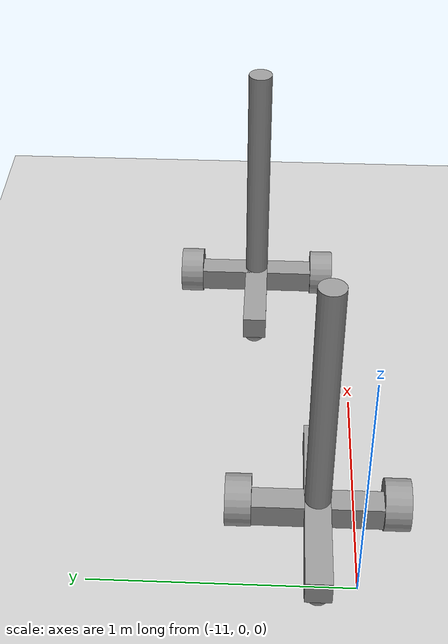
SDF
<sdf version="1.6">
 <world name="default">
  <model name="ground_plane">
   <static>1</static>
   <link name="link">
    <collision name="collision">
     <geometry><plane><normal>0 0 1</normal><size>100 100</size></plane></geometry>
     <surface><friction><ode><mu>100</mu><mu2>50</mu2></ode></friction></surface>
    </collision>
    <visual name="visual">
     <cast_shadows>0</cast_shadows>
     <geometry><plane><normal>0 0 1</normal><size>100 100</size></plane></geometry>
     <material>
      <script><uri>file://media/materials/scripts/gazebo.material</uri><name>Gazebo/Grey</name></script>
     </material>
    </visual>
   </link>
  </model>
  <model name="EimerRobot">
   <link name="link_0_clone">
    <pose>2.5834 -4.84657 0.119047 0 -0 0</pose>
    <inertial>
     <mass>1</mass>
     <inertia>
      <ixx>0.166667</ixx>
      <ixy>0</ixy>
      <ixz>0</ixz>
      <iyy>0.166667</iyy>
      <iyz>0</iyz>
      <izz>0.166667</izz>
     </inertia>
    </inertial>
    <visual name="visual">
     <geometry><box><size>0.1 0.5 0.1</size></box></geometry>
     <material>
      <lighting>1</lighting>
      <script><uri>file://media/materials/scripts/gazebo.material</uri><name>Gazebo/Grey</name></script>
      <shader type="pixel"><normal_map>__default__</normal_map></shader>
      <ambient>0.3 0.3 0.3 1</ambient>
      <diffuse>0.7 0.7 0.7 1</diffuse>
      <specular>0.01 0.01 0.01 1</specular>
      <emissive>0 0 0 1</emissive>
     </material>
    </visual>
    <collision name="collision">
     <geometry><box><size>0.1 0.5 0.1</size></box></geometry>
     <surface>
      <friction>
       <ode><mu>1</mu><mu2>1</mu2><fdir1>0 0 0</fdir1><slip1>0</slip1><slip2>0</slip2></ode>
       <torsional>
        <coefficient>1</coefficient>
        <patch_radius>0</patch_radius>
        <surface_radius>0</surface_radius>
        <use_patch_radius>1</use_patch_radius>
        <ode><slip>0</slip></ode>
       </torsional>
      </friction>
      <bounce><restitution_coefficient>0</restitution_coefficient><threshold>1e+06</threshold></bounce>
      <contact>
       <collide_without_contact>0</collide_without_contact>
       <collide_without_contact_bitmask>1</collide_without_contact_bitmask>
       <collide_bitmask>1</collide_bitmask>
       <ode>
        <soft_cfm>0</soft_cfm>
        <soft_erp>0.2</soft_erp>
        <kp>1e+13</kp>
        <kd>1</kd>
        <max_vel>0.01</max_vel>
        <min_depth>0</min_depth>
       </ode>
       <bullet>
        <split_impulse>1</split_impulse>
        <split_impulse_penetration_threshold>-0.01</split_impulse_penetration_threshold>
        <soft_cfm>0</soft_cfm>
        <soft_erp>0.2</soft_erp>
        <kp>1e+13</kp>
        <kd>1</kd>
       </bullet>
      </contact>
     </surface>
    </collision>
   </link>
   <link name="link_0_clone_clone">
    <pose>2.58152 -4.846 0.119047 0 -0 1.5707</pose>
    <inertial>
     <mass>1</mass>
     <inertia>
      <ixx>0.166667</ixx>
      <ixy>0</ixy>
      <ixz>0</ixz>
      <iyy>0.166667</iyy>
      <iyz>0</iyz>
      <izz>0.166667</izz>
     </inertia>
    </inertial>
    <visual name="visual">
     <geometry><box><size>0.1 0.8 0.1</size></box></geometry>
     <material>
      <lighting>1</lighting>
      <script><uri>file://media/materials/scripts/gazebo.material</uri><name>Gazebo/Grey</name></script>
      <shader type="pixel"><normal_map>__default__</normal_map></shader>
      <ambient>0.3 0.3 0.3 1</ambient>
      <diffuse>0.7 0.7 0.7 1</diffuse>
      <specular>0.01 0.01 0.01 1</specular>
      <emissive>0 0 0 1</emissive>
     </material>
    </visual>
    <collision name="collision">
     <geometry><box><size>0.1 0.8 0.1</size></box></geometry>
     <surface>
      <friction>
       <ode><mu>1</mu><mu2>1</mu2><fdir1>0 0 0</fdir1><slip1>0</slip1><slip2>0</slip2></ode>
       <torsional>
        <coefficient>1</coefficient>
        <patch_radius>0</patch_radius>
        <surface_radius>0</surface_radius>
        <use_patch_radius>1</use_patch_radius>
        <ode><slip>0</slip></ode>
       </torsional>
      </friction>
      <bounce><restitution_coefficient>0</restitution_coefficient><threshold>1e+06</threshold></bounce>
      <contact>
       <collide_without_contact>0</collide_without_contact>
       <collide_without_contact_bitmask>1</collide_without_contact_bitmask>
       <collide_bitmask>1</collide_bitmask>
       <ode>
        <soft_cfm>0</soft_cfm>
        <soft_erp>0.2</soft_erp>
        <kp>1e+13</kp>
        <kd>1</kd>
        <max_vel>0.01</max_vel>
        <min_depth>0</min_depth>
       </ode>
       <bullet>
        <split_impulse>1</split_impulse>
        <split_impulse_penetration_threshold>-0.01</split_impulse_penetration_threshold>
        <soft_cfm>0</soft_cfm>
        <soft_erp>0.2</soft_erp>
        <kp>1e+13</kp>
        <kd>1</kd>
       </bullet>
      </contact>
     </surface>
    </collision>
   </link>
   <link name="link_1_clone">
    <pose>2.61519 -4.54652 0.119046 1.5707 -0 0</pose>
    <inertial>
     <mass>1</mass>
     <inertia><ixx>0.145833</ixx><ixy>0</ixy><ixz>0</ixz><iyy>0.145833</iyy><iyz>0</iyz><izz>0.125</izz></inertia>
    </inertial>
    <visual name="visual">
     <geometry><cylinder><radius>0.1</radius><length>0.1</length></cylinder></geometry>
     <material>
      <lighting>1</lighting>
      <script><uri>file://media/materials/scripts/gazebo.material</uri><name>Gazebo/Grey</name></script>
      <shader type="pixel"><normal_map>__default__</normal_map></shader>
      <ambient>0.3 0.3 0.3 1</ambient>
      <diffuse>0.7 0.7 0.7 1</diffuse>
      <specular>0.01 0.01 0.01 1</specular>
      <emissive>0 0 0 1</emissive>
     </material>
    </visual>
    <collision name="collision">
     <geometry><cylinder><radius>0.1</radius><length>0.1</length></cylinder></geometry>
     <surface>
      <friction>
       <ode><mu>1</mu><mu2>1</mu2><fdir1>0 0 0</fdir1><slip1>0</slip1><slip2>0</slip2></ode>
       <torsional>
        <coefficient>1</coefficient>
        <patch_radius>0</patch_radius>
        <surface_radius>0</surface_radius>
        <use_patch_radius>1</use_patch_radius>
        <ode><slip>0</slip></ode>
       </torsional>
      </friction>
      <bounce><restitution_coefficient>0</restitution_coefficient><threshold>1e+06</threshold></bounce>
      <contact>
       <collide_without_contact>0</collide_without_contact>
       <collide_without_contact_bitmask>1</collide_without_contact_bitmask>
       <collide_bitmask>1</collide_bitmask>
       <ode>
        <soft_cfm>0</soft_cfm>
        <soft_erp>0.2</soft_erp>
        <kp>1e+13</kp>
        <kd>1</kd>
        <max_vel>0.01</max_vel>
        <min_depth>0</min_depth>
       </ode>
       <bullet>
        <split_impulse>1</split_impulse>
        <split_impulse_penetration_threshold>-0.01</split_impulse_penetration_threshold>
        <soft_cfm>0</soft_cfm>
        <soft_erp>0.2</soft_erp>
        <kp>1e+13</kp>
        <kd>1</kd>
       </bullet>
      </contact>
     </surface>
    </collision>
   </link>
   <link name="link_1_clone_clone">
    <pose>2.61534 -5.14663 0.119047 1.5707 -0 0</pose>
    <inertial>
     <mass>1</mass>
     <inertia><ixx>0.145833</ixx><ixy>0</ixy><ixz>0</ixz><iyy>0.145833</iyy><iyz>0</iyz><izz>0.125</izz></inertia>
    </inertial>
    <visual name="visual">
     <geometry><cylinder><radius>0.1</radius><length>0.1</length></cylinder></geometry>
     <material>
      <lighting>1</lighting>
      <script><uri>file://media/materials/scripts/gazebo.material</uri><name>Gazebo/Grey</name></script>
      <shader type="pixel"><normal_map>__default__</normal_map></shader>
      <ambient>0.3 0.3 0.3 1</ambient>
      <diffuse>0.7 0.7 0.7 1</diffuse>
      <specular>0.01 0.01 0.01 1</specular>
      <emissive>0 0 0 1</emissive>
     </material>
    </visual>
    <collision name="collision">
     <geometry><cylinder><radius>0.1</radius><length>0.1</length></cylinder></geometry>
     <surface>
      <friction>
       <ode><mu>1</mu><mu2>1</mu2><fdir1>0 0 0</fdir1><slip1>0</slip1><slip2>0</slip2></ode>
       <torsional>
        <coefficient>1</coefficient>
        <patch_radius>0</patch_radius>
        <surface_radius>0</surface_radius>
        <use_patch_radius>1</use_patch_radius>
        <ode><slip>0</slip></ode>
       </torsional>
      </friction>
      <bounce><restitution_coefficient>0</restitution_coefficient><threshold>1e+06</threshold></bounce>
      <contact>
       <collide_without_contact>0</collide_without_contact>
       <collide_without_contact_bitmask>1</collide_without_contact_bitmask>
       <collide_bitmask>1</collide_bitmask>
       <ode>
        <soft_cfm>0</soft_cfm>
        <soft_erp>0.2</soft_erp>
        <kp>1e+13</kp>
        <kd>1</kd>
        <max_vel>0.01</max_vel>
        <min_depth>0</min_depth>
       </ode>
       <bullet>
        <split_impulse>1</split_impulse>
        <split_impulse_penetration_threshold>-0.01</split_impulse_penetration_threshold>
        <soft_cfm>0</soft_cfm>
        <soft_erp>0.2</soft_erp>
        <kp>1e+13</kp>
        <kd>1</kd>
       </bullet>
      </contact>
     </surface>
    </collision>
   </link>
   <link name="link_3_clone">
    <pose>2.93153 -4.846 0.069047 0 -0 0</pose>
    <inertial>
     <mass>1</mass>
     <inertia><ixx>0.1</ixx><ixy>0</ixy><ixz>0</ixz><iyy>0.1</iyy><iyz>0</iyz><izz>0.1</izz></inertia>
    </inertial>
    <visual name="visual">
     <geometry><sphere><radius>0.05</radius></sphere></geometry>
     <material>
      <lighting>1</lighting>
      <script><uri>file://media/materials/scripts/gazebo.material</uri><name>Gazebo/Grey</name></script>
      <shader type="pixel"><normal_map>__default__</normal_map></shader>
      <ambient>0.3 0.3 0.3 1</ambient>
      <diffuse>0.7 0.7 0.7 1</diffuse>
      <specular>0.01 0.01 0.01 1</specular>
      <emissive>0 0 0 1</emissive>
     </material>
    </visual>
    <collision name="collision">
     <geometry><sphere><radius>0.05</radius></sphere></geometry>
     <surface>
      <friction>
       <ode><mu>1</mu><mu2>1</mu2><fdir1>0 0 0</fdir1><slip1>0</slip1><slip2>0</slip2></ode>
       <torsional>
        <coefficient>1</coefficient>
        <patch_radius>0</patch_radius>
        <surface_radius>0</surface_radius>
        <use_patch_radius>1</use_patch_radius>
        <ode><slip>0</slip></ode>
       </torsional>
      </friction>
      <bounce><restitution_coefficient>0</restitution_coefficient><threshold>1e+06</threshold></bounce>
      <contact>
       <collide_without_contact>0</collide_without_contact>
       <collide_without_contact_bitmask>1</collide_without_contact_bitmask>
       <collide_bitmask>1</collide_bitmask>
       <ode>
        <soft_cfm>0</soft_cfm>
        <soft_erp>0.2</soft_erp>
        <kp>1e+13</kp>
        <kd>1</kd>
        <max_vel>0.01</max_vel>
        <min_depth>0</min_depth>
       </ode>
       <bullet>
        <split_impulse>1</split_impulse>
        <split_impulse_penetration_threshold>-0.01</split_impulse_penetration_threshold>
        <soft_cfm>0</soft_cfm>
        <soft_erp>0.2</soft_erp>
        <kp>1e+13</kp>
        <kd>1</kd>
       </bullet>
      </contact>
     </surface>
    </collision>
   </link>
   <link name="link_3_clone_clone">
    <pose>2.23152 -4.846 0.069047 0 -0 0</pose>
    <inertial>
     <mass>1</mass>
     <inertia><ixx>0.1</ixx><ixy>0</ixy><ixz>0</ixz><iyy>0.1</iyy><iyz>0</iyz><izz>0.1</izz></inertia>
    </inertial>
    <visual name="visual">
     <geometry><sphere><radius>0.05</radius></sphere></geometry>
     <material>
      <lighting>1</lighting>
      <script><uri>file://media/materials/scripts/gazebo.material</uri><name>Gazebo/Grey</name></script>
      <shader type="pixel"><normal_map>__default__</normal_map></shader>
      <ambient>0.3 0.3 0.3 1</ambient>
      <diffuse>0.7 0.7 0.7 1</diffuse>
      <specular>0.01 0.01 0.01 1</specular>
      <emissive>0 0 0 1</emissive>
     </material>
    </visual>
    <collision name="collision">
     <geometry><sphere><radius>0.05</radius></sphere></geometry>
     <surface>
      <friction>
       <ode><mu>1</mu><mu2>1</mu2><fdir1>0 0 0</fdir1><slip1>0</slip1><slip2>0</slip2></ode>
       <torsional>
        <coefficient>1</coefficient>
        <patch_radius>0</patch_radius>
        <surface_radius>0</surface_radius>
        <use_patch_radius>1</use_patch_radius>
        <ode><slip>0</slip></ode>
       </torsional>
      </friction>
      <bounce><restitution_coefficient>0</restitution_coefficient><threshold>1e+06</threshold></bounce>
      <contact>
       <collide_without_contact>0</collide_without_contact>
       <collide_without_contact_bitmask>1</collide_without_contact_bitmask>
       <collide_bitmask>1</collide_bitmask>
       <ode>
        <soft_cfm>0</soft_cfm>
        <soft_erp>0.2</soft_erp>
        <kp>1e+13</kp>
        <kd>1</kd>
        <max_vel>0.01</max_vel>
        <min_depth>0</min_depth>
       </ode>
       <bullet>
        <split_impulse>1</split_impulse>
        <split_impulse_penetration_threshold>-0.01</split_impulse_penetration_threshold>
        <soft_cfm>0</soft_cfm>
        <soft_erp>0.2</soft_erp>
        <kp>1e+13</kp>
        <kd>1</kd>
       </bullet>
      </contact>
     </surface>
    </collision>
   </link>
   <link name="link_4">
    <pose>2.5834 -4.84657 0.669047 0 -0 0</pose>
    <inertial>
     <mass>1</mass>
     <inertia><ixx>0.145833</ixx><ixy>0</ixy><ixz>0</ixz><iyy>0.145833</iyy><iyz>0</iyz><izz>0.125</izz></inertia>
    </inertial>
    <visual name="visual">
     <geometry><cylinder><radius>0.05</radius><length>1</length></cylinder></geometry>
     <material>
      <lighting>1</lighting>
      <script><uri>file://media/materials/scripts/gazebo.material</uri><name>Gazebo/Grey</name></script>
      <shader type="pixel"><normal_map>__default__</normal_map></shader>
      <ambient>0.3 0.3 0.3 1</ambient>
      <diffuse>0.7 0.7 0.7 1</diffuse>
      <specular>0.01 0.01 0.01 1</specular>
      <emissive>0 0 0 1</emissive>
     </material>
    </visual>
    <collision name="collision">
     <geometry><cylinder><radius>0.05</radius><length>1</length></cylinder></geometry>
     <surface>
      <friction>
       <ode><mu>1</mu><mu2>1</mu2><fdir1>0 0 0</fdir1><slip1>0</slip1><slip2>0</slip2></ode>
       <torsional>
        <coefficient>1</coefficient>
        <patch_radius>0</patch_radius>
        <surface_radius>0</surface_radius>
        <use_patch_radius>1</use_patch_radius>
        <ode><slip>0</slip></ode>
       </torsional>
      </friction>
      <bounce><restitution_coefficient>0</restitution_coefficient><threshold>1e+06</threshold></bounce>
      <contact>
       <collide_without_contact>0</collide_without_contact>
       <collide_without_contact_bitmask>1</collide_without_contact_bitmask>
       <collide_bitmask>1</collide_bitmask>
       <ode>
        <soft_cfm>0</soft_cfm>
        <soft_erp>0.2</soft_erp>
        <kp>1e+13</kp>
        <kd>1</kd>
        <max_vel>0.01</max_vel>
        <min_depth>0</min_depth>
       </ode>
       <bullet>
        <split_impulse>1</split_impulse>
        <split_impulse_penetration_threshold>-0.01</split_impulse_penetration_threshold>
        <soft_cfm>0</soft_cfm>
        <soft_erp>0.2</soft_erp>
        <kp>1e+13</kp>
        <kd>1</kd>
       </bullet>
      </contact>
     </surface>
    </collision>
   </link>
   <joint name="link_0_clone_JOINT_0" type="fixed">
    <parent>link_0_clone</parent>
    <child>link_0_clone_clone</child>
    <physics>
     <ode><limit><cfm>0</cfm><erp>0.2</erp></limit><suspension><cfm>0</cfm><erp>0.2</erp></suspension></ode>
    </physics>
   </joint>
   <joint name="link_0_clone_JOINT_1" type="revolute">
    <parent>link_0_clone</parent>
    <child>link_1_clone</child>
    <axis>
     <xyz>0 0 1</xyz>
     <use_parent_model_frame>0</use_parent_model_frame>
     <limit>
      <lower>-1.79769e+308</lower>
      <upper>1.79769e+308</upper>
      <effort>-1</effort>
      <velocity>-1</velocity>
     </limit>
     <dynamics>
      <spring_reference>0</spring_reference>
      <spring_stiffness>0</spring_stiffness>
      <damping>0</damping>
     </dynamics>
    </axis>
    <physics>
     <ode><limit><cfm>0</cfm><erp>0.2</erp></limit><suspension><cfm>0</cfm><erp>0.2</erp></suspension></ode>
    </physics>
   </joint>
   <joint name="link_0_clone_JOINT_2" type="revolute">
    <parent>link_0_clone</parent>
    <child>link_1_clone_clone</child>
    <axis>
     <xyz>0 0 1</xyz>
     <use_parent_model_frame>0</use_parent_model_frame>
     <limit>
      <lower>-1.79769e+308</lower>
      <upper>1.79769e+308</upper>
      <effort>-1</effort>
      <velocity>-1</velocity>
     </limit>
     <dynamics>
      <spring_reference>0</spring_reference>
      <spring_stiffness>0</spring_stiffness>
      <damping>0</damping>
     </dynamics>
    </axis>
    <physics>
     <ode><limit><cfm>0</cfm><erp>0.2</erp></limit><suspension><cfm>0</cfm><erp>0.2</erp></suspension></ode>
    </physics>
   </joint>
   <joint name="link_0_clone_JOINT_8" type="fixed">
    <parent>link_0_clone</parent>
    <child>link_4</child>
    <physics>
     <ode><limit><cfm>0</cfm><erp>0.2</erp></limit><suspension><cfm>0</cfm><erp>0.2</erp></suspension></ode>
    </physics>
   </joint>
   <joint name="link_0_clone_clone_JOINT_5" type="ball">
    <parent>link_0_clone_clone</parent>
    <child>link_3_clone</child>
    <physics>
     <ode><limit><cfm>0</cfm><erp>0.2</erp></limit><suspension><cfm>0</cfm><erp>0.2</erp></suspension></ode>
    </physics>
   </joint>
   <joint name="link_0_clone_clone_JOINT_6" type="ball">
    <parent>link_0_clone_clone</parent>
    <child>link_3_clone_clone</child>
    <physics>
     <ode><limit><cfm>0</cfm><erp>0.2</erp></limit><suspension><cfm>0</cfm><erp>0.2</erp></suspension></ode>
    </physics>
   </joint>
   <static>0</static>
   <pose>-11.8208 5.261 -0.019125 -6e-06 -1.9e-05 -0.000245</pose>
  </model>
  <model name="EimerRobot_0">
   <link name="link_0_clone">
    <pose>2.5834 -4.84657 0.119047 0 -0 0</pose>
    <inertial>
     <mass>1</mass>
     <inertia>
      <ixx>0.166667</ixx>
      <ixy>0</ixy>
      <ixz>0</ixz>
      <iyy>0.166667</iyy>
      <iyz>0</iyz>
      <izz>0.166667</izz>
     </inertia>
    </inertial>
    <visual name="visual">
     <geometry><box><size>0.1 0.5 0.1</size></box></geometry>
     <material>
      <lighting>1</lighting>
      <script><uri>file://media/materials/scripts/gazebo.material</uri><name>Gazebo/Grey</name></script>
      <shader type="pixel"><normal_map>__default__</normal_map></shader>
      <ambient>0.3 0.3 0.3 1</ambient>
      <diffuse>0.7 0.7 0.7 1</diffuse>
      <specular>0.01 0.01 0.01 1</specular>
      <emissive>0 0 0 1</emissive>
     </material>
    </visual>
    <collision name="collision">
     <geometry><box><size>0.1 0.5 0.1</size></box></geometry>
     <surface>
      <friction>
       <ode><mu>1</mu><mu2>1</mu2><fdir1>0 0 0</fdir1><slip1>0</slip1><slip2>0</slip2></ode>
       <torsional>
        <coefficient>1</coefficient>
        <patch_radius>0</patch_radius>
        <surface_radius>0</surface_radius>
        <use_patch_radius>1</use_patch_radius>
        <ode><slip>0</slip></ode>
       </torsional>
      </friction>
      <bounce><restitution_coefficient>0</restitution_coefficient><threshold>1e+06</threshold></bounce>
      <contact>
       <collide_without_contact>0</collide_without_contact>
       <collide_without_contact_bitmask>1</collide_without_contact_bitmask>
       <collide_bitmask>1</collide_bitmask>
       <ode>
        <soft_cfm>0</soft_cfm>
        <soft_erp>0.2</soft_erp>
        <kp>1e+13</kp>
        <kd>1</kd>
        <max_vel>0.01</max_vel>
        <min_depth>0</min_depth>
       </ode>
       <bullet>
        <split_impulse>1</split_impulse>
        <split_impulse_penetration_threshold>-0.01</split_impulse_penetration_threshold>
        <soft_cfm>0</soft_cfm>
        <soft_erp>0.2</soft_erp>
        <kp>1e+13</kp>
        <kd>1</kd>
       </bullet>
      </contact>
     </surface>
    </collision>
   </link>
   <link name="link_0_clone_clone">
    <pose>2.58152 -4.846 0.119047 0 -0 1.5707</pose>
    <inertial>
     <mass>1</mass>
     <inertia>
      <ixx>0.166667</ixx>
      <ixy>0</ixy>
      <ixz>0</ixz>
      <iyy>0.166667</iyy>
      <iyz>0</iyz>
      <izz>0.166667</izz>
     </inertia>
    </inertial>
    <visual name="visual">
     <geometry><box><size>0.1 0.8 0.1</size></box></geometry>
     <material>
      <lighting>1</lighting>
      <script><uri>file://media/materials/scripts/gazebo.material</uri><name>Gazebo/Grey</name></script>
      <shader type="pixel"><normal_map>__default__</normal_map></shader>
      <ambient>0.3 0.3 0.3 1</ambient>
      <diffuse>0.7 0.7 0.7 1</diffuse>
      <specular>0.01 0.01 0.01 1</specular>
      <emissive>0 0 0 1</emissive>
     </material>
    </visual>
    <collision name="collision">
     <geometry><box><size>0.1 0.8 0.1</size></box></geometry>
     <surface>
      <friction>
       <ode><mu>1</mu><mu2>1</mu2><fdir1>0 0 0</fdir1><slip1>0</slip1><slip2>0</slip2></ode>
       <torsional>
        <coefficient>1</coefficient>
        <patch_radius>0</patch_radius>
        <surface_radius>0</surface_radius>
        <use_patch_radius>1</use_patch_radius>
        <ode><slip>0</slip></ode>
       </torsional>
      </friction>
      <bounce><restitution_coefficient>0</restitution_coefficient><threshold>1e+06</threshold></bounce>
      <contact>
       <collide_without_contact>0</collide_without_contact>
       <collide_without_contact_bitmask>1</collide_without_contact_bitmask>
       <collide_bitmask>1</collide_bitmask>
       <ode>
        <soft_cfm>0</soft_cfm>
        <soft_erp>0.2</soft_erp>
        <kp>1e+13</kp>
        <kd>1</kd>
        <max_vel>0.01</max_vel>
        <min_depth>0</min_depth>
       </ode>
       <bullet>
        <split_impulse>1</split_impulse>
        <split_impulse_penetration_threshold>-0.01</split_impulse_penetration_threshold>
        <soft_cfm>0</soft_cfm>
        <soft_erp>0.2</soft_erp>
        <kp>1e+13</kp>
        <kd>1</kd>
       </bullet>
      </contact>
     </surface>
    </collision>
   </link>
   <link name="link_1_clone">
    <pose>2.61519 -4.54652 0.119046 1.5707 -0 0</pose>
    <inertial>
     <mass>1</mass>
     <inertia><ixx>0.145833</ixx><ixy>0</ixy><ixz>0</ixz><iyy>0.145833</iyy><iyz>0</iyz><izz>0.125</izz></inertia>
    </inertial>
    <visual name="visual">
     <geometry><cylinder><radius>0.1</radius><length>0.1</length></cylinder></geometry>
     <material>
      <lighting>1</lighting>
      <script><uri>file://media/materials/scripts/gazebo.material</uri><name>Gazebo/Grey</name></script>
      <shader type="pixel"><normal_map>__default__</normal_map></shader>
      <ambient>0.3 0.3 0.3 1</ambient>
      <diffuse>0.7 0.7 0.7 1</diffuse>
      <specular>0.01 0.01 0.01 1</specular>
      <emissive>0 0 0 1</emissive>
     </material>
    </visual>
    <collision name="collision">
     <geometry><cylinder><radius>0.1</radius><length>0.1</length></cylinder></geometry>
     <surface>
      <friction>
       <ode><mu>1</mu><mu2>1</mu2><fdir1>0 0 0</fdir1><slip1>0</slip1><slip2>0</slip2></ode>
       <torsional>
        <coefficient>1</coefficient>
        <patch_radius>0</patch_radius>
        <surface_radius>0</surface_radius>
        <use_patch_radius>1</use_patch_radius>
        <ode><slip>0</slip></ode>
       </torsional>
      </friction>
      <bounce><restitution_coefficient>0</restitution_coefficient><threshold>1e+06</threshold></bounce>
      <contact>
       <collide_without_contact>0</collide_without_contact>
       <collide_without_contact_bitmask>1</collide_without_contact_bitmask>
       <collide_bitmask>1</collide_bitmask>
       <ode>
        <soft_cfm>0</soft_cfm>
        <soft_erp>0.2</soft_erp>
        <kp>1e+13</kp>
        <kd>1</kd>
        <max_vel>0.01</max_vel>
        <min_depth>0</min_depth>
       </ode>
       <bullet>
        <split_impulse>1</split_impulse>
        <split_impulse_penetration_threshold>-0.01</split_impulse_penetration_threshold>
        <soft_cfm>0</soft_cfm>
        <soft_erp>0.2</soft_erp>
        <kp>1e+13</kp>
        <kd>1</kd>
       </bullet>
      </contact>
     </surface>
    </collision>
   </link>
   <link name="link_1_clone_clone">
    <pose>2.61534 -5.14663 0.119047 1.5707 -0 0</pose>
    <inertial>
     <mass>1</mass>
     <inertia><ixx>0.145833</ixx><ixy>0</ixy><ixz>0</ixz><iyy>0.145833</iyy><iyz>0</iyz><izz>0.125</izz></inertia>
    </inertial>
    <visual name="visual">
     <geometry><cylinder><radius>0.1</radius><length>0.1</length></cylinder></geometry>
     <material>
      <lighting>1</lighting>
      <script><uri>file://media/materials/scripts/gazebo.material</uri><name>Gazebo/Grey</name></script>
      <shader type="pixel"><normal_map>__default__</normal_map></shader>
      <ambient>0.3 0.3 0.3 1</ambient>
      <diffuse>0.7 0.7 0.7 1</diffuse>
      <specular>0.01 0.01 0.01 1</specular>
      <emissive>0 0 0 1</emissive>
     </material>
    </visual>
    <collision name="collision">
     <geometry><cylinder><radius>0.1</radius><length>0.1</length></cylinder></geometry>
     <surface>
      <friction>
       <ode><mu>1</mu><mu2>1</mu2><fdir1>0 0 0</fdir1><slip1>0</slip1><slip2>0</slip2></ode>
       <torsional>
        <coefficient>1</coefficient>
        <patch_radius>0</patch_radius>
        <surface_radius>0</surface_radius>
        <use_patch_radius>1</use_patch_radius>
        <ode><slip>0</slip></ode>
       </torsional>
      </friction>
      <bounce><restitution_coefficient>0</restitution_coefficient><threshold>1e+06</threshold></bounce>
      <contact>
       <collide_without_contact>0</collide_without_contact>
       <collide_without_contact_bitmask>1</collide_without_contact_bitmask>
       <collide_bitmask>1</collide_bitmask>
       <ode>
        <soft_cfm>0</soft_cfm>
        <soft_erp>0.2</soft_erp>
        <kp>1e+13</kp>
        <kd>1</kd>
        <max_vel>0.01</max_vel>
        <min_depth>0</min_depth>
       </ode>
       <bullet>
        <split_impulse>1</split_impulse>
        <split_impulse_penetration_threshold>-0.01</split_impulse_penetration_threshold>
        <soft_cfm>0</soft_cfm>
        <soft_erp>0.2</soft_erp>
        <kp>1e+13</kp>
        <kd>1</kd>
       </bullet>
      </contact>
     </surface>
    </collision>
   </link>
   <link name="link_3_clone">
    <pose>2.93153 -4.846 0.069047 0 -0 0</pose>
    <inertial>
     <mass>1</mass>
     <inertia><ixx>0.1</ixx><ixy>0</ixy><ixz>0</ixz><iyy>0.1</iyy><iyz>0</iyz><izz>0.1</izz></inertia>
    </inertial>
    <visual name="visual">
     <geometry><sphere><radius>0.05</radius></sphere></geometry>
     <material>
      <lighting>1</lighting>
      <script><uri>file://media/materials/scripts/gazebo.material</uri><name>Gazebo/Grey</name></script>
      <shader type="pixel"><normal_map>__default__</normal_map></shader>
      <ambient>0.3 0.3 0.3 1</ambient>
      <diffuse>0.7 0.7 0.7 1</diffuse>
      <specular>0.01 0.01 0.01 1</specular>
      <emissive>0 0 0 1</emissive>
     </material>
    </visual>
    <collision name="collision">
     <geometry><sphere><radius>0.05</radius></sphere></geometry>
     <surface>
      <friction>
       <ode><mu>1</mu><mu2>1</mu2><fdir1>0 0 0</fdir1><slip1>0</slip1><slip2>0</slip2></ode>
       <torsional>
        <coefficient>1</coefficient>
        <patch_radius>0</patch_radius>
        <surface_radius>0</surface_radius>
        <use_patch_radius>1</use_patch_radius>
        <ode><slip>0</slip></ode>
       </torsional>
      </friction>
      <bounce><restitution_coefficient>0</restitution_coefficient><threshold>1e+06</threshold></bounce>
      <contact>
       <collide_without_contact>0</collide_without_contact>
       <collide_without_contact_bitmask>1</collide_without_contact_bitmask>
       <collide_bitmask>1</collide_bitmask>
       <ode>
        <soft_cfm>0</soft_cfm>
        <soft_erp>0.2</soft_erp>
        <kp>1e+13</kp>
        <kd>1</kd>
        <max_vel>0.01</max_vel>
        <min_depth>0</min_depth>
       </ode>
       <bullet>
        <split_impulse>1</split_impulse>
        <split_impulse_penetration_threshold>-0.01</split_impulse_penetration_threshold>
        <soft_cfm>0</soft_cfm>
        <soft_erp>0.2</soft_erp>
        <kp>1e+13</kp>
        <kd>1</kd>
       </bullet>
      </contact>
     </surface>
    </collision>
   </link>
   <link name="link_3_clone_clone">
    <pose>2.23152 -4.846 0.069047 0 -0 0</pose>
    <inertial>
     <mass>1</mass>
     <inertia><ixx>0.1</ixx><ixy>0</ixy><ixz>0</ixz><iyy>0.1</iyy><iyz>0</iyz><izz>0.1</izz></inertia>
    </inertial>
    <visual name="visual">
     <geometry><sphere><radius>0.05</radius></sphere></geometry>
     <material>
      <lighting>1</lighting>
      <script><uri>file://media/materials/scripts/gazebo.material</uri><name>Gazebo/Grey</name></script>
      <shader type="pixel"><normal_map>__default__</normal_map></shader>
      <ambient>0.3 0.3 0.3 1</ambient>
      <diffuse>0.7 0.7 0.7 1</diffuse>
      <specular>0.01 0.01 0.01 1</specular>
      <emissive>0 0 0 1</emissive>
     </material>
    </visual>
    <collision name="collision">
     <geometry><sphere><radius>0.05</radius></sphere></geometry>
     <surface>
      <friction>
       <ode><mu>1</mu><mu2>1</mu2><fdir1>0 0 0</fdir1><slip1>0</slip1><slip2>0</slip2></ode>
       <torsional>
        <coefficient>1</coefficient>
        <patch_radius>0</patch_radius>
        <surface_radius>0</surface_radius>
        <use_patch_radius>1</use_patch_radius>
        <ode><slip>0</slip></ode>
       </torsional>
      </friction>
      <bounce><restitution_coefficient>0</restitution_coefficient><threshold>1e+06</threshold></bounce>
      <contact>
       <collide_without_contact>0</collide_without_contact>
       <collide_without_contact_bitmask>1</collide_without_contact_bitmask>
       <collide_bitmask>1</collide_bitmask>
       <ode>
        <soft_cfm>0</soft_cfm>
        <soft_erp>0.2</soft_erp>
        <kp>1e+13</kp>
        <kd>1</kd>
        <max_vel>0.01</max_vel>
        <min_depth>0</min_depth>
       </ode>
       <bullet>
        <split_impulse>1</split_impulse>
        <split_impulse_penetration_threshold>-0.01</split_impulse_penetration_threshold>
        <soft_cfm>0</soft_cfm>
        <soft_erp>0.2</soft_erp>
        <kp>1e+13</kp>
        <kd>1</kd>
       </bullet>
      </contact>
     </surface>
    </collision>
   </link>
   <link name="link_4">
    <pose>2.5834 -4.84657 0.669047 0 -0 0</pose>
    <inertial>
     <mass>1</mass>
     <inertia><ixx>0.145833</ixx><ixy>0</ixy><ixz>0</ixz><iyy>0.145833</iyy><iyz>0</iyz><izz>0.125</izz></inertia>
    </inertial>
    <visual name="visual">
     <geometry><cylinder><radius>0.05</radius><length>1</length></cylinder></geometry>
     <material>
      <lighting>1</lighting>
      <script><uri>file://media/materials/scripts/gazebo.material</uri><name>Gazebo/Grey</name></script>
      <shader type="pixel"><normal_map>__default__</normal_map></shader>
      <ambient>0.3 0.3 0.3 1</ambient>
      <diffuse>0.7 0.7 0.7 1</diffuse>
      <specular>0.01 0.01 0.01 1</specular>
      <emissive>0 0 0 1</emissive>
     </material>
    </visual>
    <collision name="collision">
     <geometry><cylinder><radius>0.05</radius><length>1</length></cylinder></geometry>
     <surface>
      <friction>
       <ode><mu>1</mu><mu2>1</mu2><fdir1>0 0 0</fdir1><slip1>0</slip1><slip2>0</slip2></ode>
       <torsional>
        <coefficient>1</coefficient>
        <patch_radius>0</patch_radius>
        <surface_radius>0</surface_radius>
        <use_patch_radius>1</use_patch_radius>
        <ode><slip>0</slip></ode>
       </torsional>
      </friction>
      <bounce><restitution_coefficient>0</restitution_coefficient><threshold>1e+06</threshold></bounce>
      <contact>
       <collide_without_contact>0</collide_without_contact>
       <collide_without_contact_bitmask>1</collide_without_contact_bitmask>
       <collide_bitmask>1</collide_bitmask>
       <ode>
        <soft_cfm>0</soft_cfm>
        <soft_erp>0.2</soft_erp>
        <kp>1e+13</kp>
        <kd>1</kd>
        <max_vel>0.01</max_vel>
        <min_depth>0</min_depth>
       </ode>
       <bullet>
        <split_impulse>1</split_impulse>
        <split_impulse_penetration_threshold>-0.01</split_impulse_penetration_threshold>
        <soft_cfm>0</soft_cfm>
        <soft_erp>0.2</soft_erp>
        <kp>1e+13</kp>
        <kd>1</kd>
       </bullet>
      </contact>
     </surface>
    </collision>
   </link>
   <joint name="link_0_clone_JOINT_0" type="fixed">
    <parent>link_0_clone</parent>
    <child>link_0_clone_clone</child>
    <physics>
     <ode><limit><cfm>0</cfm><erp>0.2</erp></limit><suspension><cfm>0</cfm><erp>0.2</erp></suspension></ode>
    </physics>
   </joint>
   <joint name="link_0_clone_JOINT_1" type="revolute">
    <parent>link_0_clone</parent>
    <child>link_1_clone</child>
    <axis>
     <xyz>0 0 1</xyz>
     <use_parent_model_frame>0</use_parent_model_frame>
     <limit>
      <lower>-1.79769e+308</lower>
      <upper>1.79769e+308</upper>
      <effort>-1</effort>
      <velocity>-1</velocity>
     </limit>
     <dynamics>
      <spring_reference>0</spring_reference>
      <spring_stiffness>0</spring_stiffness>
      <damping>0</damping>
     </dynamics>
    </axis>
    <physics>
     <ode><limit><cfm>0</cfm><erp>0.2</erp></limit><suspension><cfm>0</cfm><erp>0.2</erp></suspension></ode>
    </physics>
   </joint>
   <joint name="link_0_clone_JOINT_2" type="revolute">
    <parent>link_0_clone</parent>
    <child>link_1_clone_clone</child>
    <axis>
     <xyz>0 0 1</xyz>
     <use_parent_model_frame>0</use_parent_model_frame>
     <limit>
      <lower>-1.79769e+308</lower>
      <upper>1.79769e+308</upper>
      <effort>-1</effort>
      <velocity>-1</velocity>
     </limit>
     <dynamics>
      <spring_reference>0</spring_reference>
      <spring_stiffness>0</spring_stiffness>
      <damping>0</damping>
     </dynamics>
    </axis>
    <physics>
     <ode><limit><cfm>0</cfm><erp>0.2</erp></limit><suspension><cfm>0</cfm><erp>0.2</erp></suspension></ode>
    </physics>
   </joint>
   <joint name="link_0_clone_JOINT_8" type="fixed">
    <parent>link_0_clone</parent>
    <child>link_4</child>
    <physics>
     <ode><limit><cfm>0</cfm><erp>0.2</erp></limit><suspension><cfm>0</cfm><erp>0.2</erp></suspension></ode>
    </physics>
   </joint>
   <joint name="link_0_clone_clone_JOINT_5" type="ball">
    <parent>link_0_clone_clone</parent>
    <child>link_3_clone</child>
    <physics>
     <ode><limit><cfm>0</cfm><erp>0.2</erp></limit><suspension><cfm>0</cfm><erp>0.2</erp></suspension></ode>
    </physics>
   </joint>
   <joint name="link_0_clone_clone_JOINT_6" type="ball">
    <parent>link_0_clone_clone</parent>
    <child>link_3_clone_clone</child>
    <physics>
     <ode><limit><cfm>0</cfm><erp>0.2</erp></limit><suspension><cfm>0</cfm><erp>0.2</erp></suspension></ode>
    </physics>
   </joint>
   <static>0</static>
   <pose>-13.304 4.99509 0 0 -0 0</pose>
  </model>
 </world>
</sdf>
